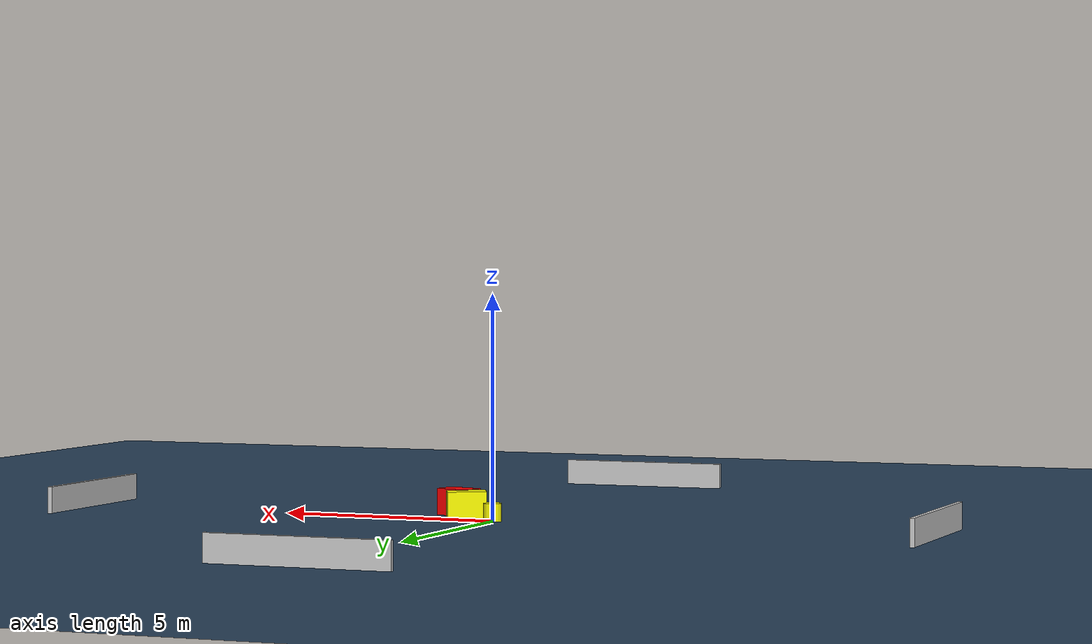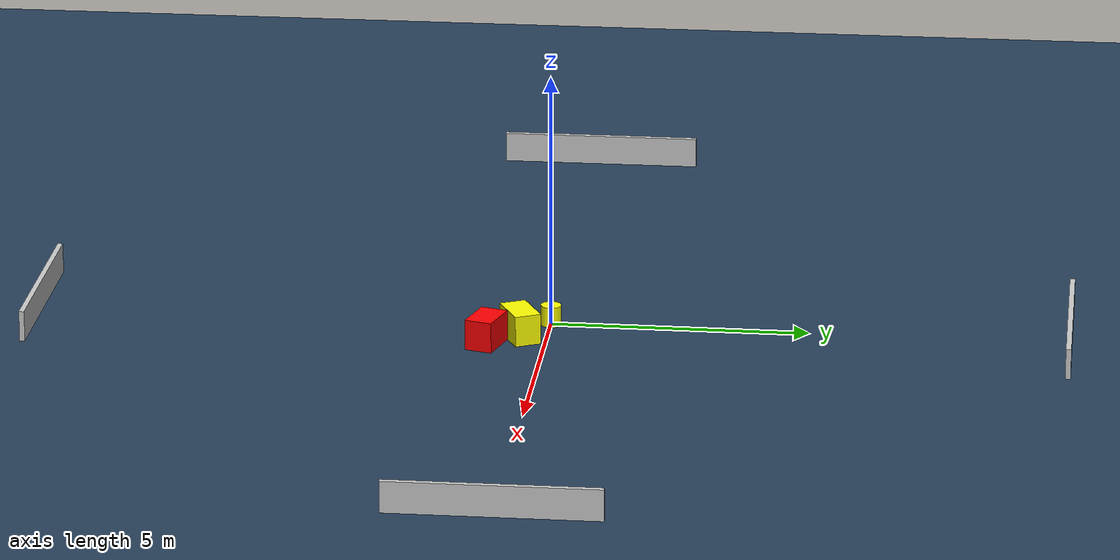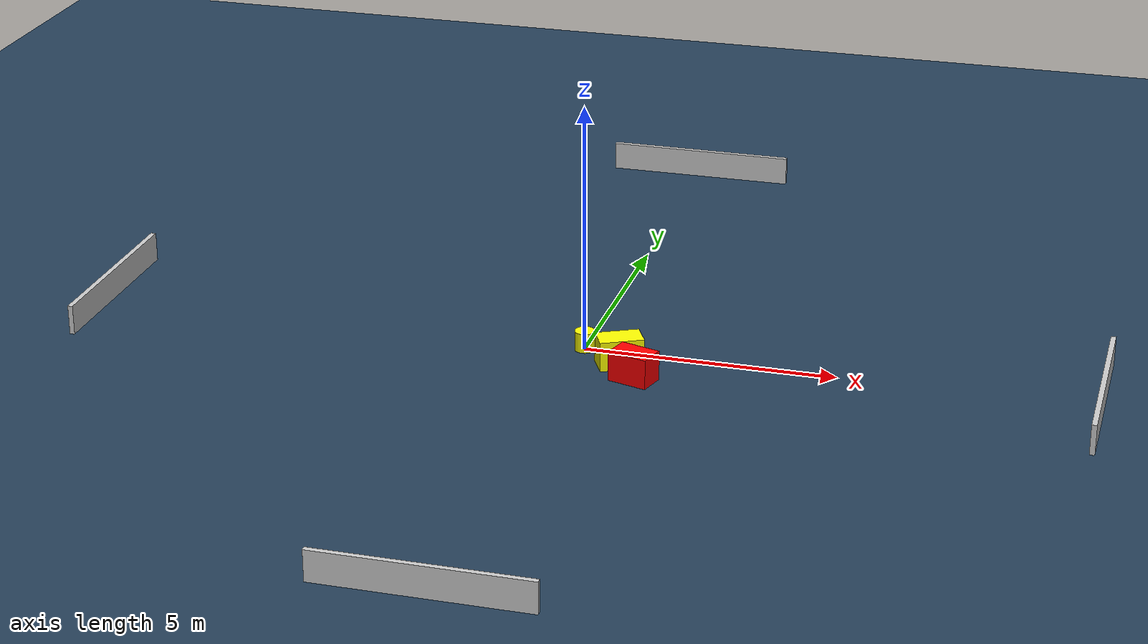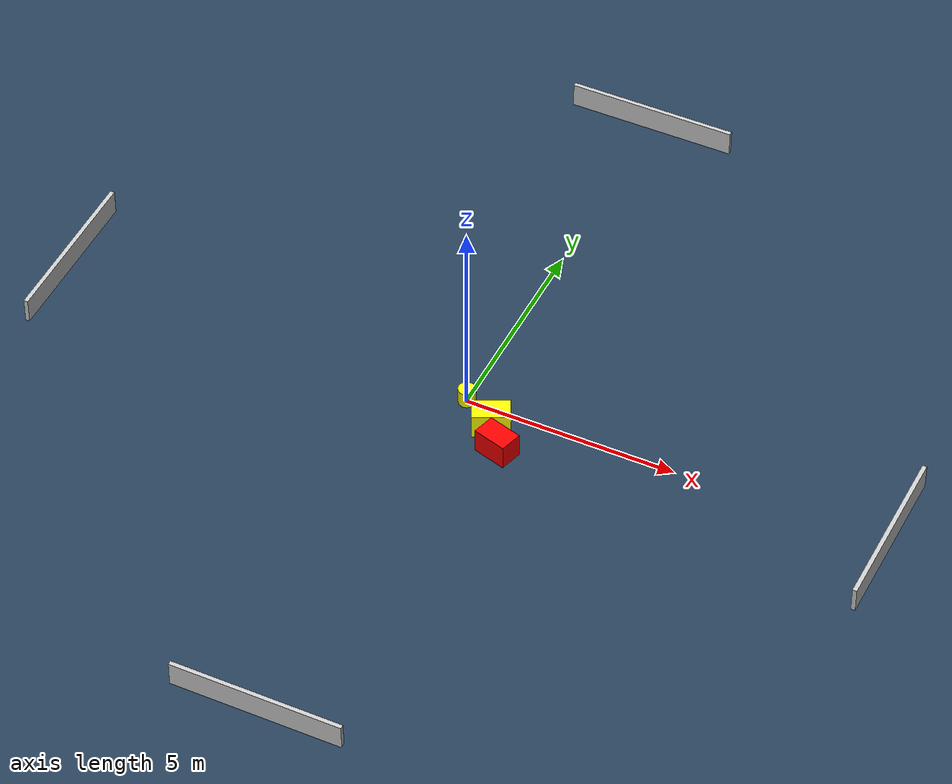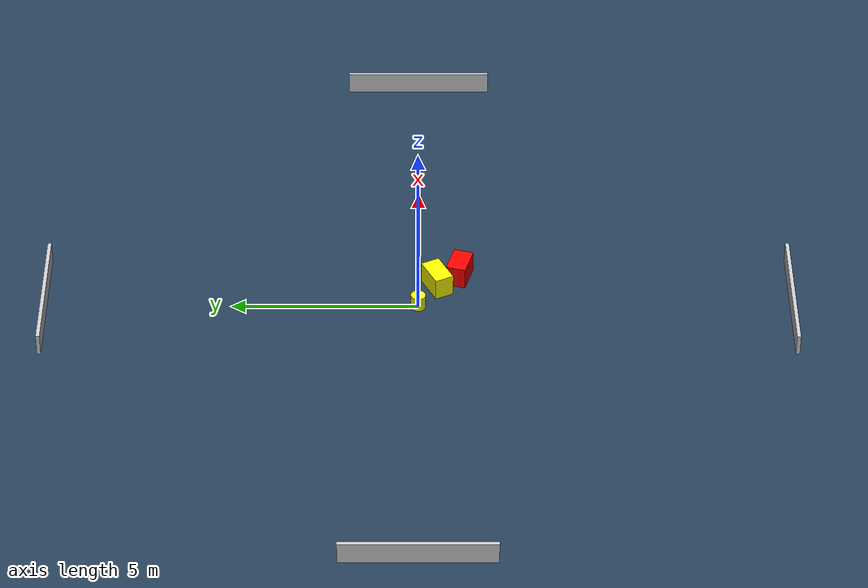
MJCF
<?xml version="1.0" ?>
<mujoco model="generated_environment">
  <option timestep="0.01" integrator="RK4" cone="elliptic"/>
  <default>
    <geom density="1"/>
  </default>
  <asset>
    <texture builtin="gradient" height="3072" name="skybox" rgb1="0.3 0.5 0.7" rgb2="0 0 0" type="skybox" width="512"/>
    <texture builtin="checker" height="300" name="groundplane" rgb1="0.2 0.3 0.4" rgb2="0.1 0.2 0.3" type="2d" width="300"/>
    <material name="groundplane" reflectance="0.2" texrepeat="5 5" texture="groundplane"/>
  </asset>
  <worldbody>
    <light dir="0 0 -1" directional="true" pos="0 0 1.5"/>
    <geom condim="3" friction="0.5 0.005 0.001" material="groundplane" name="floor" pos="0 0 0" size="0 0 0.05" type="plane"/>
    <body name="walls">
      <geom name="wall_1" condim="4" pos="-10.0 0.0 0.3" rgba="0.800000011920929 0.800000011920929 0.800000011920929 1.0" size="0.05 2.0 0.3" type="box"/>
      <geom name="wall_2" condim="4" pos="10.0 0.0 0.3" rgba="0.800000011920929 0.800000011920929 0.800000011920929 1.0" size="0.05 2.0 0.3" type="box"/>
      <geom name="wall_3" condim="4" pos="0.0 -10.0 0.3" rgba="0.800000011920929 0.800000011920929 0.800000011920929 1.0" size="2.0 0.05 0.3" type="box"/>
      <geom name="wall_4" condim="4" pos="0.0 10.0 0.3" rgba="0.800000011920929 0.800000011920929 0.800000011920929 1.0" size="2.0 0.05 0.3" type="box"/>
    </body>
    <body name="robot">
      <joint name="joint_x" type="slide" pos="0 0 0" axis="1 0 0"/>
      <joint name="joint_y" type="slide" pos="0 0 0" axis="0 1 0"/>
      <geom name="robot" type="cylinder" pos="0.0 0.0 0.2" size="0.2 0.2 0.0" mass="5.0" friction="1.0 0.005 0.0001" condim="4" rgba="1.0 1.0 0.0 1.0"/>
    </body>
    <body name="obstacle_1_movable">
      <geom name="obstacle_1_movable" condim="4" pos="0.8316159341957278 -0.5085891245603666 0.3" euler="0 0 116.45844355403365" friction="0.0 0.005 0.001" rgba="1.0 1.0 0.0 1.0" size="0.26137363157950966 0.43564044147865677 0.3" type="box" mass="0.1"/>
      <joint type="free"/>
    </body>
    <body name="obstacle_2_static">
      <geom name="obstacle_2_static" condim="4" pos="1.2685668469586826 -1.1152971048192346 0.3" euler="0 0 343.6398570582453" friction="0.0 0.005 0.001" rgba="1.0 0.0 0.0 1.0" size="0.40736173379789303 0.2680755475822494 0.3" type="box"/>
    </body>
  </worldbody>
  <actuator>
    <motor name="actuator_x" joint="joint_x" gear="1" ctrlrange="-1 1"/>
    <motor name="actuator_y" joint="joint_y" gear="1" ctrlrange="-1 1"/>
  </actuator>
</mujoco>
